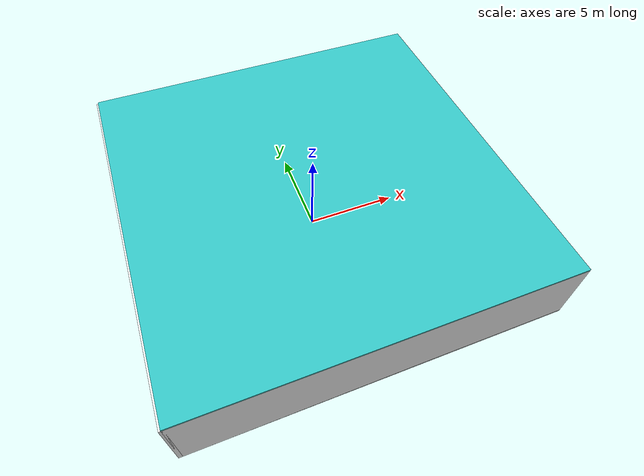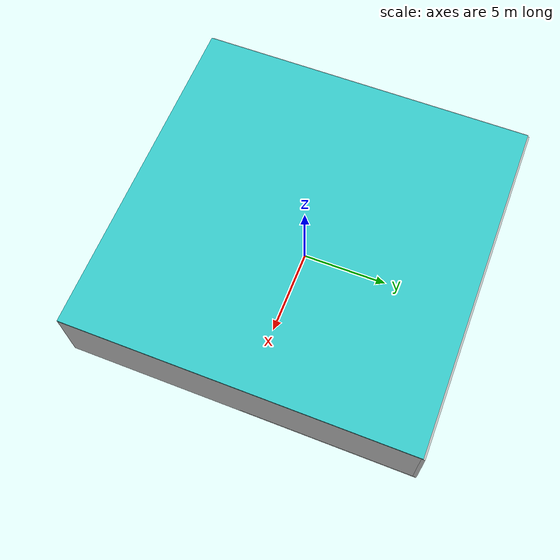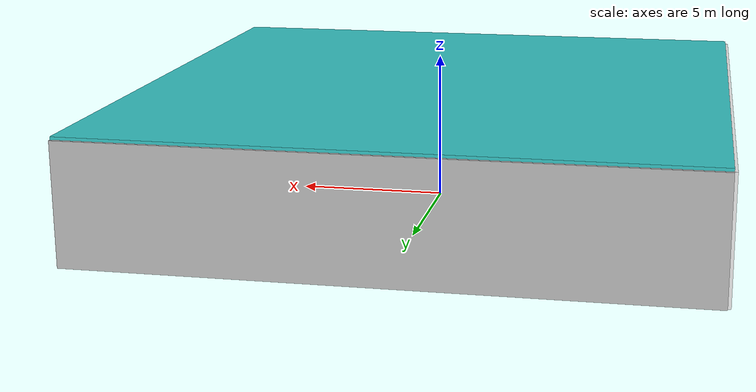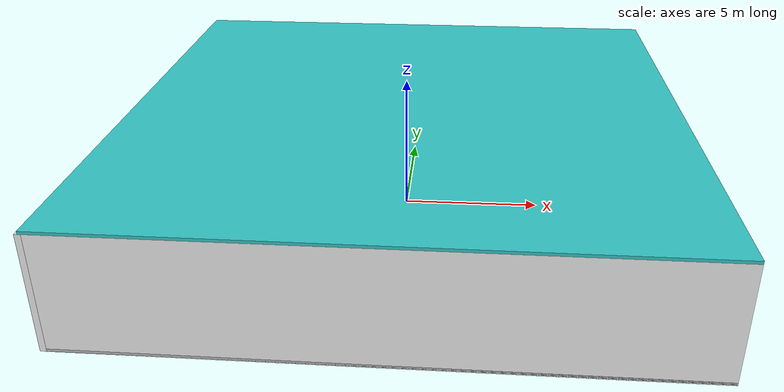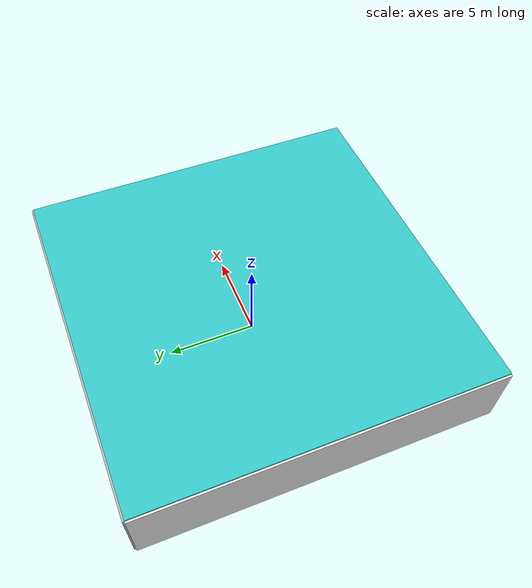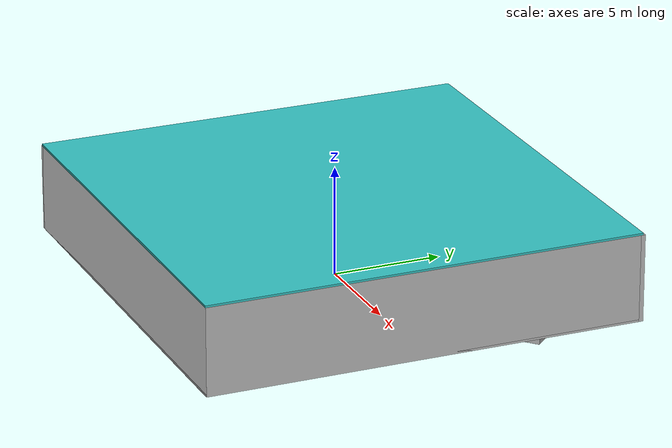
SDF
<sdf version="1.4">
 <world name="default">
  <physics type="ode">
   <max_step_size>0.001</max_step_size>
   <real_time_factor>1</real_time_factor>
   <real_time_update_rate>1000</real_time_update_rate>
   <gravity>0 0 -9.8</gravity>
  </physics>
  <scene><ambient>0.4 0.4 0.4 1</ambient><background>0.7 0.7 0.7 1</background><shadows>1</shadows></scene>
  <model name="Surrounding">
   <static>1</static>
   <link name="Ceiling">
    <collision name="Ceiling_Collision"><geometry><box><size>20 20 0.1</size></box></geometry></collision>
    <visual name="Ceiling_Visual">
     <geometry><box><size>20 20 0.1</size></box></geometry>
     <material>
      <script><uri>file://media/materials/scripts/gazebo.material</uri><name>Gazebo/Turquoise</name></script>
     </material>
    </visual>
    <pose>0 0 4.05 0 0 0</pose>
   </link>
   <link name="Wall_South">
    <collision name="Wall_South_Collision">
     <geometry><box><size>20 0 4</size></box></geometry>
     <pose>0 0 2 0 -0 0</pose>
    </collision>
    <visual name="Wall_South_Visual">
     <pose>0 0 2 0 -0 0</pose>
     <geometry><box><size>20 0 4</size></box></geometry>
     <material>
      <script><uri>file://media/materials/scripts/gazebo.material</uri><name>Gazebo/WhiteGlow</name></script>
     </material>
    </visual>
    <velocity_decay><linear>0</linear><angular>0</angular></velocity_decay>
    <pose>0 -10 0 0 -0 0</pose>
   </link>
   <link name="Wall_East">
    <collision name="Wall_21_Collision">
     <geometry><box><size>20 0 4</size></box></geometry>
     <pose>0 0 2 0 -0 0</pose>
    </collision>
    <visual name="Wall_21_Visual">
     <pose>0 0 2 0 -0 0</pose>
     <geometry><box><size>20 0 4</size></box></geometry>
     <material>
      <script><uri>file://media/materials/scripts/gazebo.material</uri><name>Gazebo/CloudySky</name></script>
     </material>
    </visual>
    <velocity_decay><linear>0</linear><angular>0</angular></velocity_decay>
    <pose>10 0 0 0 -0 1.5708</pose>
   </link>
   <link name="Wall_North">
    <collision name="Wall_22_Collision">
     <geometry><box><size>20 0.2 4</size></box></geometry>
     <pose>0 0 2 0 -0 0</pose>
    </collision>
    <visual name="Wall_22_Visual">
     <pose>0 0 2 0 -0 0</pose>
     <geometry><box><size>20 0.2 4</size></box></geometry>
     <material>
      <script><uri>file://media/materials/scripts/gazebo.material</uri><name>Gazebo/CloudySky</name></script>
     </material>
    </visual>
    <velocity_decay><linear>0</linear><angular>0</angular></velocity_decay>
    <pose>0 10 0 0 -0 0</pose>
   </link>
   <link name="Wall_West">
    <collision name="Wall_23_Collision">
     <geometry><box><size>20 0.2 4</size></box></geometry>
     <pose>0 0 2 0 -0 0</pose>
    </collision>
    <visual name="Wall_23_Visual">
     <pose>0 0 2 0 -0 0</pose>
     <geometry><box><size>20 0.2 4</size></box></geometry>
     <material>
      <script><uri>file://media/materials/scripts/gazebo.material</uri><name>Gazebo/WhiteGlow</name></script>
     </material>
    </visual>
    <velocity_decay><linear>0</linear><angular>0</angular></velocity_decay>
    <pose>-10 0 0 0 0 -1.5708</pose>
   </link>
   <link name="Ground_link">
    <collision name="collision">
     <pose>0 0 .05 0 -0 0</pose>
     <geometry><box><size>20 20 0.1</size></box></geometry>
    </collision>
    <visual name="visual">
     <pose>0 0 .05 0 -0 0</pose>
     <geometry><box><size>20 20 0.1</size></box></geometry>
     <material>
      <script><uri>file://media/materials/scripts/gazebo.material</uri><name>Gazebo/PioneerBody</name></script>
     </material>
    </visual>
   </link>
   <static>1</static>
  </model>
  <spherical_coordinates>
   <surface_model>EARTH_WGS84</surface_model>
   <latitude_deg>0</latitude_deg>
   <longitude_deg>0</longitude_deg>
   <elevation>0</elevation>
   <heading_deg>0</heading_deg>
  </spherical_coordinates>
  <light name="lightball_0" type="diffuse">
   <diffuse>0.8 0.8 0.8 1</diffuse>
   <specular>0.2 0.2 0.2 1</specular>
   <attenuation>
    <range>100</range>
    <constant>0.7</constant>
    <linear>0.01</linear>
    <quadratic>0.001</quadratic>
   </attenuation>
   <direction>-0.5 0.1 -0.9</direction>
   <pose>-3.91430590247 3.47898537258 2.56751621191 0 0 0</pose>
  </light>
  <light name="lightball_1" type="diffuse">
   <diffuse>0.8 0.8 0.8 1</diffuse>
   <specular>0.2 0.2 0.2 1</specular>
   <attenuation>
    <range>100</range>
    <constant>0.7</constant>
    <linear>0.01</linear>
    <quadratic>0.001</quadratic>
   </attenuation>
   <direction>-0.5 0.1 -0.9</direction>
   <pose>-5.60711372444 -5.26149782881 1.86824707239 0 0 0</pose>
  </light>
  <light name="lightball_2" type="diffuse">
   <diffuse>0.8 0.8 0.8 1</diffuse>
   <specular>0.2 0.2 0.2 1</specular>
   <attenuation>
    <range>100</range>
    <constant>0.7</constant>
    <linear>0.01</linear>
    <quadratic>0.001</quadratic>
   </attenuation>
   <direction>-0.5 0.1 -0.9</direction>
   <pose>7.23626566958 7.72450838613 2.03964628801 0 0 0</pose>
  </light>
  <light name="lightball_3" type="diffuse">
   <diffuse>0.8 0.8 0.8 1</diffuse>
   <specular>0.2 0.2 0.2 1</specular>
   <attenuation>
    <range>100</range>
    <constant>0.7</constant>
    <linear>0.01</linear>
    <quadratic>0.001</quadratic>
   </attenuation>
   <direction>-0.5 0.1 -0.9</direction>
   <pose>-0.0263918677773 -1.16689612355 3.74441316699 0 0 0</pose>
  </light>
  <light name="lightball_4" type="diffuse">
   <diffuse>0.8 0.8 0.8 1</diffuse>
   <specular>0.2 0.2 0.2 1</specular>
   <attenuation>
    <range>100</range>
    <constant>0.7</constant>
    <linear>0.01</linear>
    <quadratic>0.001</quadratic>
   </attenuation>
   <direction>-0.5 0.1 -0.9</direction>
   <pose>2.57679630779 -3.22739414586 3.09792345118 0 0 0</pose>
  </light>
  <light name="lightball_5" type="diffuse">
   <diffuse>0.8 0.8 0.8 1</diffuse>
   <specular>0.2 0.2 0.2 1</specular>
   <attenuation>
    <range>100</range>
    <constant>0.7</constant>
    <linear>0.01</linear>
    <quadratic>0.001</quadratic>
   </attenuation>
   <direction>-0.5 0.1 -0.9</direction>
   <pose>5.64302679253 -7.93616817267 1.14756324473 0 0 0</pose>
  </light>
  <light name="lightball_6" type="diffuse">
   <diffuse>0.8 0.8 0.8 1</diffuse>
   <specular>0.2 0.2 0.2 1</specular>
   <attenuation>
    <range>100</range>
    <constant>0.7</constant>
    <linear>0.01</linear>
    <quadratic>0.001</quadratic>
   </attenuation>
   <direction>-0.5 0.1 -0.9</direction>
   <pose>-9.68730605235 -8.60464578412 0.528456839747 0 0 0</pose>
  </light>
  <light name="lightball_7" type="diffuse">
   <diffuse>0.8 0.8 0.8 1</diffuse>
   <specular>0.2 0.2 0.2 1</specular>
   <attenuation>
    <range>100</range>
    <constant>0.7</constant>
    <linear>0.01</linear>
    <quadratic>0.001</quadratic>
   </attenuation>
   <direction>-0.5 0.1 -0.9</direction>
   <pose>6.52891382197 5.21351721729 2.35543405244 0 0 0</pose>
  </light>
  <light name="lightball_8" type="diffuse">
   <diffuse>0.8 0.8 0.8 1</diffuse>
   <specular>0.2 0.2 0.2 1</specular>
   <attenuation>
    <range>100</range>
    <constant>0.7</constant>
    <linear>0.01</linear>
    <quadratic>0.001</quadratic>
   </attenuation>
   <direction>-0.5 0.1 -0.9</direction>
   <pose>-7.25262501359 -7.09179890007 2.30707335439 0 0 0</pose>
  </light>
  <light name="lightball_9" type="diffuse">
   <diffuse>0.8 0.8 0.8 1</diffuse>
   <specular>0.2 0.2 0.2 1</specular>
   <attenuation>
    <range>100</range>
    <constant>0.7</constant>
    <linear>0.01</linear>
    <quadratic>0.001</quadratic>
   </attenuation>
   <direction>-0.5 0.1 -0.9</direction>
   <pose>-8.96463978356 -7.08018373326 3.22923615711 0 0 0</pose>
  </light>
  <light name="lightball_10" type="diffuse">
   <diffuse>0.8 0.8 0.8 1</diffuse>
   <specular>0.2 0.2 0.2 1</specular>
   <attenuation>
    <range>100</range>
    <constant>0.7</constant>
    <linear>0.01</linear>
    <quadratic>0.001</quadratic>
   </attenuation>
   <direction>-0.5 0.1 -0.9</direction>
   <pose>-1.86236952698 -5.82610226048 1.23814937357 0 0 0</pose>
  </light>
  <light name="lightball_11" type="diffuse">
   <diffuse>0.8 0.8 0.8 1</diffuse>
   <specular>0.2 0.2 0.2 1</specular>
   <attenuation>
    <range>100</range>
    <constant>0.7</constant>
    <linear>0.01</linear>
    <quadratic>0.001</quadratic>
   </attenuation>
   <direction>-0.5 0.1 -0.9</direction>
   <pose>0.4151095724 -2.56734185718 2.49953026665 0 0 0</pose>
  </light>
  <light name="lightball_12" type="diffuse">
   <diffuse>0.8 0.8 0.8 1</diffuse>
   <specular>0.2 0.2 0.2 1</specular>
   <attenuation>
    <range>100</range>
    <constant>0.7</constant>
    <linear>0.01</linear>
    <quadratic>0.001</quadratic>
   </attenuation>
   <direction>-0.5 0.1 -0.9</direction>
   <pose>7.88488983319 -1.81896218694 1.51044278222 0 0 0</pose>
  </light>
  <include>
   <uri>model://textured_shapes</uri>
   <pose>-7.24387346728 0.985298320039 0 0 0 0.0994097726596</pose>
  </include>
  <include>
   <uri>model://robocup_3Dsim_goal</uri>
   <pose>-7.86764750198 7.02326872569 0 0 0 2.87345348346</pose>
  </include>
  <include><uri>model://table</uri><pose>-4.46303859457 7.24893040529 0 0 0 0.00318229842452</pose></include>
  <include><uri>model://cabinet</uri><pose>-1.4387101356 -5.20254098158 0 0 0 2.83566665447</pose></include>
  <include><uri>model://cabinet</uri><pose>1.51579471269 -1.89551753636 0 0 0 0.758215405579</pose></include>
  <include>
   <uri>model://robocup_3Dsim_goal</uri>
   <pose>3.78871080673 -5.03273353429 0 0 0 1.08774316856</pose>
  </include>
  <include>
   <uri>model://textured_shapes</uri>
   <pose>3.95134813056 4.94141517867 0 0 0 3.04950469092</pose>
  </include>
  <include><uri>model://table</uri><pose>7.98594467004 1.66555559961 0 0 0 1.1605484874</pose></include>
  <include>
   <uri>model://textured_shapes</uri>
   <pose>7.67277736362 4.46235411746 0 0 0 2.3048493204</pose>
  </include>
  <include><uri>model://cabinet</uri><pose>7.31423249538 7.64380178091 0 0 0 1.84266353282</pose></include>
 </world>
</sdf>

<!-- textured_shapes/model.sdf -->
<sdf version="1.6">
  <model name="textured_shapes">
    <pose>0 0 0.5 0 0 0</pose>
    <link name="box">
      <pose>0 -1.5 0 0 0 0</pose>
      <collision name="collision">
        <geometry>
          <box>
            <size>1 1 1</size>
          </box>
        </geometry>
      </collision>
      <visual name="visual">
        <geometry>
          <box>
            <size>1 1 1</size>
          </box>
        </geometry>
        <material>
          <script>
            <uri>model://../model_source/models/textured_shapes/materials/scripts</uri>
            <uri>model://../model_source/models/textured_shapes/materials/textures</uri>
            <name>TexturedShape/Squares</name>
          </script>
        </material>
      </visual>
    </link>
    <link name="sphere">
      <collision name="collision">
        <geometry>
          <sphere>
            <radius>0.5</radius>
          </sphere>
        </geometry>
      </collision>
      <visual name="visual">
        <geometry>
          <sphere>
            <radius>0.5</radius>
          </sphere>
        </geometry>
        <material>
          <script>
            <uri>model://../model_source/models/textured_shapes/materials/scripts</uri>
            <uri>model://../model_source/models/textured_shapes/materials/textures</uri>
            <name>TexturedShape/Squares</name>
          </script>
        </material>
      </visual>
    </link>
    <link name="cylinder">
      <pose>0 1.5 0 0 0 0</pose>
      <collision name="collision">
        <geometry>
          <cylinder>
            <radius>0.5</radius>
            <length>1</length>
          </cylinder>
        </geometry>
      </collision>
      <visual name="visual">
        <geometry>
          <cylinder>
            <radius>0.5</radius>
            <length>1</length>
          </cylinder>
        </geometry>
        <material>
          <script>
            <uri>model://../model_source/models/textured_shapes/materials/scripts</uri>
            <uri>model://../model_source/models/textured_shapes/materials/textures</uri>
            <name>TexturedShape/Squares</name>
          </script>
        </material>
      </visual>
    </link>
  </model>
</sdf>

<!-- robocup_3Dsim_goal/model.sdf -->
<sdf version="1.5">
  <model name="robocup_3d_goal">
    <static>true</static>
    <link name="left_post">
      <pose>0 1.05 0.45 0 0 0</pose>
      <collision name="collision">
        <geometry>
          <cylinder>
            <radius>0.05</radius>
            <length>0.9</length>
          </cylinder>
        </geometry>
      </collision>
      <visual name="visual">
        <geometry>
          <cylinder>
            <radius>0.05</radius>
            <length>0.9</length>
          </cylinder>
        </geometry>
        <material>
          <script>
            <uri>file://media/materials/scripts/gazebo.material</uri>
            <name>Gazebo/ZincYellow</name>
          </script>
        </material>
      </visual>
    </link>
    <link name="left_support_horiz_lower">
      <pose>0.30 1.05 0.01 0 0 0</pose>
      <collision name="collision">
        <geometry>
          <box>
            <size>0.50 0.02 0.02</size>
          </box>
        </geometry>
      </collision>
      <visual name="visual">
        <geometry>
          <box>
            <size>0.50 0.02 0.02</size>
          </box>
        </geometry>
        <material>
          <script>
            <uri>file://media/materials/scripts/gazebo.material</uri>
            <name>Gazebo/White</name>
          </script>
        </material>
      </visual>
    </link>
    <link name="left_support_horiz_upper">
      <pose>0.30 1.05 0.79 0 0 0</pose>
      <collision name="collision">
        <geometry>
          <box>
            <size>0.50 0.02 0.02</size>
          </box>
        </geometry>
      </collision>
      <visual name="visual">
        <geometry>
          <box>
            <size>0.50 0.02 0.02</size>
          </box>
        </geometry>
        <material>
          <script>
            <uri>file://media/materials/scripts/gazebo.material</uri>
            <name>Gazebo/White</name>
          </script>
        </material>
      </visual>
    </link>
    <link name="left_support_vertical">
      <pose>0.56 1.05 0.4 0 1.5708 0</pose>
      <collision name="collision">
        <geometry>
          <box>
            <size>0.80 0.02 0.02</size>
          </box>
        </geometry>
      </collision>
      <visual name="visual">
        <geometry>
          <box>
            <size>0.80 0.02 0.02</size>
          </box>
        </geometry>
        <material>
          <script>
            <uri>file://media/materials/scripts/gazebo.material</uri>
            <name>Gazebo/White</name>
          </script>
        </material>
      </visual>
    </link>
    <link name="right_support_horiz_lower">
      <pose>0.30 -1.05 0.01 0 0 0</pose>
      <collision name="collision">
        <geometry>
          <box>
            <size>0.50 0.02 0.02</size>
          </box>
        </geometry>
      </collision>
      <visual name="visual">
        <geometry>
          <box>
            <size>0.50 0.02 0.02</size>
          </box>
        </geometry>
        <material>
          <script>
            <uri>file://media/materials/scripts/gazebo.material</uri>
            <name>Gazebo/White</name>
          </script>
        </material>
      </visual>
    </link>
    <link name="right_support_horiz_upper">
      <pose>0.30 -1.05 0.79 0 0 0</pose>
      <collision name="collision">
        <geometry>
          <box>
            <size>0.50 0.02 0.02</size>
          </box>
        </geometry>
      </collision>
      <visual name="visual">
        <geometry>
          <box>
            <size>0.50 0.02 0.02</size>
          </box>
        </geometry>
        <material>
          <script>
            <uri>file://media/materials/scripts/gazebo.material</uri>
            <name>Gazebo/White</name>
          </script>
        </material>
      </visual>
    </link>
    <link name="right_support_vertical">
      <pose>0.56 -1.05 0.4 0 1.5708 0</pose>
      <collision name="collision">
        <geometry>
          <box>
            <size>0.80 0.02 0.02</size>
          </box>
        </geometry>
      </collision>
      <visual name="visual">
        <geometry>
          <box>
            <size>0.80 0.02 0.02</size>
          </box>
        </geometry>
        <material>
          <script>
            <uri>file://media/materials/scripts/gazebo.material</uri>
            <name>Gazebo/White</name>
          </script>
        </material>
      </visual>
    </link>
    <link name="center_support_horiz_lower">
      <pose>0.56 0 0.01 0 1.5708 0</pose>
      <collision name="collision">
        <geometry>
          <box>
            <size>0.02 2.08 0.02</size>
          </box>
        </geometry>
      </collision>
      <visual name="visual">
        <geometry>
          <box>
            <size>0.02 2.08 0.02</size>
          </box>
        </geometry>
        <material>
          <script>
            <uri>file://media/materials/scripts/gazebo.material</uri>
            <name>Gazebo/White</name>
          </script>
        </material>
      </visual>
    </link>
    <link name="center_support_horiz_upper">
      <pose>0.56 0 0.79 0 1.5708 0</pose>
      <collision name="collision">
        <geometry>
          <box>
            <size>0.02 2.08 0.02</size>
          </box>
        </geometry>
      </collision>
      <visual name="visual">
        <geometry>
          <box>
            <size>0.02 2.08 0.02</size>
          </box>
        </geometry>
        <material>
          <script>
            <uri>file://media/materials/scripts/gazebo.material</uri>
            <name>Gazebo/White</name>
          </script>
        </material>
      </visual>
    </link>
    <link name="right_post">
      <pose>0 -1.05 0.45 0 0 0</pose>
      <collision name="collision">
        <geometry>
          <cylinder>
            <radius>0.05</radius>
            <length>0.9</length>
          </cylinder>
        </geometry>
      </collision>
      <visual name="visual">
        <geometry>
          <cylinder>
            <radius>0.05</radius>
            <length>0.9</length>
          </cylinder>
        </geometry>
        <material>
          <script>
            <uri>file://media/materials/scripts/gazebo.material</uri>
            <name>Gazebo/ZincYellow</name>
          </script>
        </material>
      </visual>
    </link>
    <link name="crossbar">
      <pose>0 0 0.85 1.57 1.57 0</pose>
      <collision name="collision">
        <geometry>
          <cylinder>
            <radius>0.05</radius>
            <length>2.0</length>
          </cylinder>
        </geometry>
      </collision>
      <visual name="visual">
        <geometry>
          <cylinder>
            <radius>0.05</radius>
            <length>2.0</length>
          </cylinder>
        </geometry>
        <material>
          <script>
            <uri>file://media/materials/scripts/gazebo.material</uri>
            <name>Gazebo/ZincYellow</name>
          </script>
        </material>
      </visual>
    </link>
    <link name="center_net">
      <pose>0.56 0 0.40 0 0 0</pose>
      <collision name="collision">
        <geometry>
          <box>
            <size>0.01 2.1 0.80</size>
          </box>
        </geometry>
      </collision>
      <visual name="visual">
        <geometry>
          <box>
            <size>0.01 2.1 0.80</size>
          </box>
        </geometry>
        <material>
          <script>
            <uri>model://../model_source/models/robocup09_spl_field/materials/scripts/</uri>
            <uri>model://../model_source/models/robocup09_spl_field/materials/textures/</uri>
            <name>RoboCup/Net</name>
          </script>
        </material>
      </visual>
    </link>
    <link name="left_net">
      <pose>0.30 1.05 0.40 0 0 0</pose>
      <collision name="collision">
        <geometry>
          <box>
            <size>0.50 0.01 0.76</size>
          </box>
        </geometry>
      </collision>
      <visual name="visual">
        <geometry>
          <box>
            <size>0.50 0.01 0.76</size>
          </box>
        </geometry>
        <material>
          <script>
            <uri>model://../model_source/models/robocup09_spl_field/materials/scripts/</uri>
            <uri>model://../model_source/models/robocup09_spl_field/materials/textures/</uri>
            <name>RoboCup/Net</name>
          </script>
        </material>
      </visual>
    </link>
    <link name="right_net">
      <pose>0.30 -1.05 0.40 0 0 0</pose>
      <collision name="collision">
        <geometry>
          <box>
            <size>0.50 0.01 0.76</size>
          </box>
        </geometry>
      </collision>
      <visual name="visual">
        <geometry>
          <box>
            <size>0.50 0.01 0.76</size>
          </box>
        </geometry>
        <material>
          <script>
            <uri>model://../model_source/models/robocup09_spl_field/materials/scripts/</uri>
            <uri>model://../model_source/models/robocup09_spl_field/materials/textures/</uri>
            <name>RoboCup/Net</name>
          </script>
        </material>
      </visual>
    </link>
  </model>
</sdf>

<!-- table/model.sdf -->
<sdf version="1.5">
  <model name="table">
    <static>true</static>
    <link name="link">
      <collision name="surface">
        <pose>0 0 1.0 0 0 0</pose>
        <geometry>
          <box>
            <size>1.5 0.8 0.03</size>
          </box>
        </geometry>
        <surface>
          <friction>
            <ode>
              <mu>0.6</mu>
              <mu2>0.6</mu2>
            </ode>
          </friction>
        </surface>
      </collision>
      <visual name="visual1">
        <pose>0 0 1.0 0 0 0</pose>
        <geometry>
          <box>
            <size>1.5 0.8 0.03</size>
          </box>
        </geometry>
        <material>
          <script>
            <uri>model://media/materials/scripts/gazebo.material</uri>
            <name>Gazebo/Wood</name>
          </script>
        </material>
      </visual>
      <collision name="front_left_leg">
        <pose>0.68 0.38 0.5 0 0 0</pose>
        <geometry>
          <cylinder>
            <radius>0.02</radius>
            <length>1.0</length>
          </cylinder>
        </geometry>
      </collision>
      <visual name="front_left_leg">
        <pose>0.68 0.38 0.5 0 0 0</pose>
        <geometry>
          <cylinder>
            <radius>0.02</radius>
            <length>1.0</length>
          </cylinder>
        </geometry>
        <material>
          <script>
            <uri>model://media/materials/scripts/gazebo.material</uri>
            <name>Gazebo/Grey</name>
          </script>
        </material>
      </visual>
      <collision name="front_right_leg">
        <pose>0.68 -0.38 0.5 0 0 0</pose>
        <geometry>
          <cylinder>
            <radius>0.02</radius>
            <length>1.0</length>
          </cylinder>
        </geometry>
      </collision>
      <visual name="front_right_leg">
        <pose>0.68 -0.38 0.5 0 0 0</pose>
        <geometry>
          <cylinder>
            <radius>0.02</radius>
            <length>1.0</length>
          </cylinder>
        </geometry>
        <material>
          <script>
            <uri>model://media/materials/scripts/gazebo.material</uri>
            <name>Gazebo/Grey</name>
          </script>
        </material>
      </visual>
      <collision name="back_right_leg">
        <pose>-0.68 -0.38 0.5 0 0 0</pose>
        <geometry>
          <cylinder>
            <radius>0.02</radius>
            <length>1.0</length>
          </cylinder>
        </geometry>
      </collision>
      <visual name="back_right_leg">
        <pose>-0.68 -0.38 0.5 0 0 0</pose>
        <geometry>
          <cylinder>
            <radius>0.02</radius>
            <length>1.0</length>
          </cylinder>
        </geometry>
        <material>
          <script>
            <uri>model://media/materials/scripts/gazebo.material</uri>
            <name>Gazebo/Grey</name>
          </script>
        </material>
      </visual>
      <collision name="back_left_leg">
        <pose>-0.68 0.38 0.5 0 0 0</pose>
        <geometry>
          <cylinder>
            <radius>0.02</radius>
            <length>1.0</length>
          </cylinder>
        </geometry>
      </collision>
      <visual name="back_left_leg">
        <pose>-0.68 0.38 0.5 0 0 0</pose>
        <geometry>
          <cylinder>
            <radius>0.02</radius>
            <length>1.0</length>
          </cylinder>
        </geometry>
        <material>
          <script>
            <uri>model://media/materials/scripts/gazebo.material</uri>
            <name>Gazebo/Grey</name>
          </script>
        </material>
      </visual>
    </link>
  </model>
</sdf>

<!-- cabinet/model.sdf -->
<sdf version="1.5">
  <model name="cabinet">
    <static>true</static>
    <link name="cabinet_bottom_plate">
      <inertial>
        <pose>0 0 -1 0 0 0</pose>
        <inertia>
          <ixx>2.050000</ixx>
          <ixy>0</ixy>
          <ixz>0</ixz>
          <iyy>2.050000</iyy>
          <iyz>0</iyz>
          <izz>2.050000</izz>
        </inertia>
        <mass>25.000000</mass>
      </inertial>
      <collision name="cabinet_bottom_plate_geom">
        <pose>0 0 0.010000 0 0 0</pose>
        <geometry>
          <box>
            <size>0.450000 0.450000 0.020000</size>
          </box>
        </geometry>
      </collision>
      <visual name="cabinet_bottom_plate_geom_visual">
        <pose>0 0 0.010000 0 0 0</pose>
        <geometry>
          <box>
            <size>0.450000 0.450000 0.020000</size>
          </box>
        </geometry>
        <material>
          <script>
            <uri>model://media/materials/scripts/gazebo.material</uri>
            <name>Gazebo/Wood</name>
          </script>
        </material>
      </visual>
      <collision name="cabinet_bottom_plate_geom_cabinet_back_plate">
        <pose>0.235000 0 0.510000 0 0 0</pose>
        <geometry>
          <box>
            <size>0.020000 0.450000 1.020000</size>
          </box>
        </geometry>
      </collision>
      <visual name="cabinet_bottom_plate_geom_cabinet_back_plate_visual">
        <pose>0.235000 0 0.510000 0 0 0</pose>
        <geometry>
          <box>
            <size>0.020000 0.450000 1.020000</size>
          </box>
        </geometry>
        <material>
          <script>
            <uri>model://media/materials/scripts/gazebo.material</uri>
            <name>Gazebo/Wood</name>
          </script>
        </material>
      </visual>
      <collision name="cabinet_bottom_plate_geom_cabinet_left_plate">
        <pose>0 0.235000 0.510000 0 0 0</pose>
        <geometry>
          <box>
            <size>0.450000 0.020000 1.020000</size>
          </box>
        </geometry>
      </collision>
      <visual name="cabinet_bottom_plate_geom_cabinet_left_plate_visual">
        <pose>0 0.235000 0.510000 0 0 0</pose>
        <geometry>
          <box>
            <size>0.450000 0.020000 1.020000</size>
          </box>
        </geometry>
        <material>
          <script>
            <uri>model://media/materials/scripts/gazebo.material</uri>
            <name>Gazebo/Wood</name>
          </script>
        </material>
      </visual>
      <collision name="cabinet_bottom_plate_geom_cabinet_middle_plate">
        <pose>0 0 0.510000 0 0 0</pose>
        <geometry>
          <box>
            <size>0.450000 0.450000 0.020000</size>
          </box>
        </geometry>
      </collision>
      <visual name="cabinet_bottom_plate_geom_cabinet_middle_plate_visual">
        <pose>0 0 0.510000 0 0 0</pose>
        <geometry>
          <box>
            <size>0.450000 0.450000 0.020000</size>
          </box>
        </geometry>
        <material>
          <script>
            <uri>model://media/materials/scripts/gazebo.material</uri>
            <name>Gazebo/Wood</name>
          </script>
        </material>
      </visual>
      <collision name="cabinet_bottom_plate_geom_cabinet_right_plate">
        <pose>0 -0.235000 0.510000 0 0 0</pose>
        <geometry>
          <box>
            <size>0.450000 0.020000 1.020000</size>
          </box>
        </geometry>
      </collision>
      <visual name="cabinet_bottom_plate_geom_cabinet_right_plate_visual">
        <pose>0 -0.235000 0.510000 0 0 0</pose>
        <geometry>
          <box>
            <size>0.450000 0.020000 1.020000</size>
          </box>
        </geometry>
        <material>
          <script>
            <uri>model://media/materials/scripts/gazebo.material</uri>
            <name>Gazebo/Wood</name>
          </script>
        </material>
      </visual>
      <collision name="cabinet_bottom_plate_geom_cabinet_top_plate">
        <pose>0 0 1.010000 0 0 0</pose>
        <geometry>
          <box>
            <size>0.450000 0.450000 0.020000</size>
          </box>
        </geometry>
      </collision>
      <visual name="cabinet_bottom_plate_geom_cabinet_top_plate_visual">
        <pose>0 0 1.010000 0 0 0</pose>
        <geometry>
          <box>
            <size>0.450000 0.450000 0.020000</size>
          </box>
        </geometry>
        <material>
          <script>
            <uri>model://media/materials/scripts/gazebo.material</uri>
            <name>Gazebo/Wood</name>
          </script>
        </material>
      </visual>
    </link>
  </model>
</sdf>
